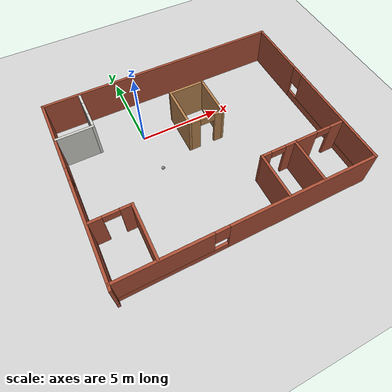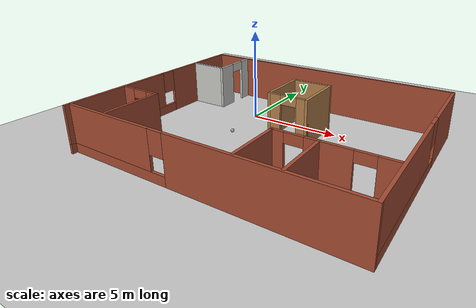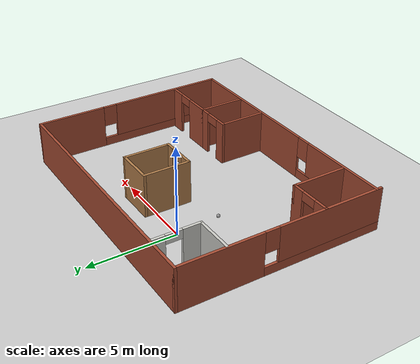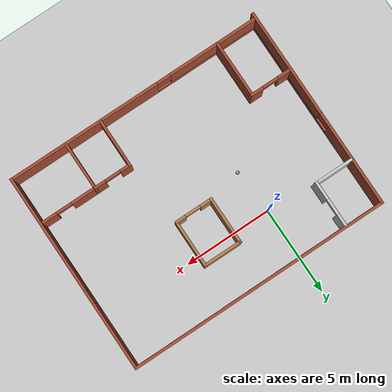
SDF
<sdf version="1.6">
 <world name="default">
  <light name="sun" type="directional">
   <pose>0 0 10 0 -0 0</pose>
   <diffuse>0.8 0.8 0.8 1</diffuse>
   <specular>0.2 0.2 0.2 1</specular>
   <attenuation>
    <range>1000</range>
    <constant>0.9</constant>
    <linear>0.01</linear>
    <quadratic>0.001</quadratic>
   </attenuation>
   <direction>-0.5 0.1 -0.9</direction>
  </light>
  <model name="ground_plane">
   <static>1</static>
   <link name="link">
    <collision name="collision">
     <geometry><plane><normal>0 0 1</normal><size>100 100</size></plane></geometry>
     <surface><friction><ode><mu>100</mu><mu2>50</mu2></ode></friction></surface>
    </collision>
    <visual name="visual">
     <cast_shadows>0</cast_shadows>
     <geometry><plane><normal>0 0 1</normal><size>100 100</size></plane></geometry>
     <material>
      <script><uri>file://media/materials/scripts/gazebo.material</uri><name>Gazebo/Grey</name></script>
     </material>
    </visual>
   </link>
  </model>
  <gravity>0 0 -9.8</gravity>
  <magnetic_field>6e-06 2.3e-05 -4.2e-05</magnetic_field>
  <atmosphere type="adiabatic"/>
  <physics name="default_physics" default="0" type="ode">
   <max_step_size>0.001</max_step_size>
   <real_time_factor>1</real_time_factor>
   <real_time_update_rate>1000</real_time_update_rate>
  </physics>
  <scene><ambient>0.4 0.4 0.4 1</ambient><background>0.7 0.7 0.7 1</background><shadows>1</shadows></scene>
  <spherical_coordinates>
   <surface_model>EARTH_WGS84</surface_model>
   <latitude_deg>0</latitude_deg>
   <longitude_deg>0</longitude_deg>
   <elevation>0</elevation>
   <heading_deg>0</heading_deg>
  </spherical_coordinates>
  <model name="mybuilding">
   <pose>2.60767 -2.86136 0 0 -0 0</pose>
   <link name="Wall_0">
    <pose>-7.425 0 0 0 0 -1.5708</pose>
    <visual name="Wall_0_Visual_0">
     <pose>-3.49613 0 1.25 0 -0 0</pose>
     <geometry><box><size>4.75774 0.15 2.5</size></box></geometry>
     <material>
      <script><uri>file://media/materials/scripts/gazebo.material</uri><name>Gazebo/Bricks</name></script>
      <ambient>1 1 1 1</ambient>
     </material>
     <meta><layer>0</layer></meta>
    </visual>
    <collision name="Wall_0_Collision_0">
     <geometry><box><size>4.75774 0.15 2.5</size></box></geometry>
     <pose>-3.49613 0 1.25 0 -0 0</pose>
    </collision>
    <visual name="Wall_0_Visual_1">
     <pose>2.37887 0 0.25 0 -0 0</pose>
     <geometry><box><size>6.99226 0.15 0.5</size></box></geometry>
     <material>
      <script><uri>file://media/materials/scripts/gazebo.material</uri><name>Gazebo/Bricks</name></script>
      <ambient>1 1 1 1</ambient>
     </material>
     <meta><layer>0</layer></meta>
    </visual>
    <collision name="Wall_0_Collision_1">
     <geometry><box><size>6.99226 0.15 0.5</size></box></geometry>
     <pose>2.37887 0 0.25 0 -0 0</pose>
    </collision>
    <visual name="Wall_0_Visual_2">
     <pose>2.77887 0 1.5 0 -0 0</pose>
     <geometry><box><size>6.19226 0.15 2</size></box></geometry>
     <material>
      <script><uri>file://media/materials/scripts/gazebo.material</uri><name>Gazebo/Bricks</name></script>
      <ambient>1 1 1 1</ambient>
     </material>
     <meta><layer>0</layer></meta>
    </visual>
    <collision name="Wall_0_Collision_2">
     <geometry><box><size>6.19226 0.15 2</size></box></geometry>
     <pose>2.77887 0 1.5 0 -0 0</pose>
    </collision>
    <visual name="Wall_0_Visual_3">
     <pose>-0.717256 0 1.9 0 -0 0</pose>
     <geometry><box><size>0.8 0.15 1.2</size></box></geometry>
     <material>
      <script><uri>file://media/materials/scripts/gazebo.material</uri><name>Gazebo/Bricks</name></script>
      <ambient>1 1 1 1</ambient>
     </material>
     <meta><layer>0</layer></meta>
    </visual>
    <collision name="Wall_0_Collision_3">
     <geometry><box><size>0.8 0.15 1.2</size></box></geometry>
     <pose>-0.717256 0 1.9 0 -0 0</pose>
    </collision>
   </link>
   <link name="Wall_10">
    <collision name="Wall_10_Collision">
     <geometry><box><size>2.75 0.15 2.5</size></box></geometry>
     <pose>0 0 1.25 0 -0 0</pose>
    </collision>
    <visual name="Wall_10_Visual">
     <pose>0 0 1.25 0 -0 0</pose>
     <geometry><box><size>2.75 0.15 2.5</size></box></geometry>
     <material>
      <script><uri>file://media/materials/scripts/gazebo.material</uri><name>Gazebo/Bricks</name></script>
      <ambient>1 1 1 1</ambient>
     </material>
     <meta><layer>0</layer></meta>
    </visual>
    <pose>4.15995 -4.1634 0 0 -0 1.5708</pose>
   </link>
   <link name="Wall_11">
    <pose>5.70995 -2.8634 0 0 -0 0</pose>
    <visual name="Wall_11_Visual_0">
     <pose>-0.878827 0 1.25 0 -0 0</pose>
     <geometry><box><size>1.49235 0.15 2.5</size></box></geometry>
     <material>
      <script><uri>file://media/materials/scripts/gazebo.material</uri><name>Gazebo/Bricks</name></script>
      <ambient>1 1 1 1</ambient>
     </material>
     <meta><layer>0</layer></meta>
    </visual>
    <collision name="Wall_11_Collision_0">
     <geometry><box><size>1.49235 0.15 2.5</size></box></geometry>
     <pose>-0.878827 0 1.25 0 -0 0</pose>
    </collision>
    <visual name="Wall_11_Visual_1">
     <pose>1.19617 0 1.25 0 -0 0</pose>
     <geometry><box><size>0.857654 0.15 2.5</size></box></geometry>
     <material>
      <script><uri>file://media/materials/scripts/gazebo.material</uri><name>Gazebo/Bricks</name></script>
      <ambient>1 1 1 1</ambient>
     </material>
     <meta><layer>0</layer></meta>
    </visual>
    <collision name="Wall_11_Collision_1">
     <geometry><box><size>0.857654 0.15 2.5</size></box></geometry>
     <pose>1.19617 0 1.25 0 -0 0</pose>
    </collision>
    <visual name="Wall_11_Visual_2">
     <pose>0.317346 0 2.25 0 -0 0</pose>
     <geometry><box><size>0.9 0.15 0.5</size></box></geometry>
     <material>
      <script><uri>file://media/materials/scripts/gazebo.material</uri><name>Gazebo/Bricks</name></script>
      <ambient>1 1 1 1</ambient>
     </material>
     <meta><layer>0</layer></meta>
    </visual>
    <collision name="Wall_11_Collision_2">
     <geometry><box><size>0.9 0.15 0.5</size></box></geometry>
     <pose>0.317346 0 2.25 0 -0 0</pose>
    </collision>
   </link>
   <link name="Wall_13">
    <pose>3.10995 -2.8634 0 0 -0 3.14159</pose>
    <visual name="Wall_13_Visual_0">
     <pose>-0.773337 0 1.25 0 -0 0</pose>
     <geometry><box><size>0.703327 0.15 2.5</size></box></geometry>
     <material>
      <script><uri>file://media/materials/scripts/gazebo.material</uri><name>Gazebo/Bricks</name></script>
      <ambient>1 1 1 1</ambient>
     </material>
     <meta><layer>0</layer></meta>
    </visual>
    <collision name="Wall_13_Collision_0">
     <geometry><box><size>0.703327 0.15 2.5</size></box></geometry>
     <pose>-0.773337 0 1.25 0 -0 0</pose>
    </collision>
    <visual name="Wall_13_Visual_1">
     <pose>0.801663 0 1.25 0 -0 0</pose>
     <geometry><box><size>0.646673 0.15 2.5</size></box></geometry>
     <material>
      <script><uri>file://media/materials/scripts/gazebo.material</uri><name>Gazebo/Bricks</name></script>
      <ambient>1 1 1 1</ambient>
     </material>
     <meta><layer>0</layer></meta>
    </visual>
    <collision name="Wall_13_Collision_1">
     <geometry><box><size>0.646673 0.15 2.5</size></box></geometry>
     <pose>0.801663 0 1.25 0 -0 0</pose>
    </collision>
    <visual name="Wall_13_Visual_2">
     <pose>0.028327 0 2.25 0 -0 0</pose>
     <geometry><box><size>0.9 0.15 0.5</size></box></geometry>
     <material>
      <script><uri>file://media/materials/scripts/gazebo.material</uri><name>Gazebo/Bricks</name></script>
      <ambient>1 1 1 1</ambient>
     </material>
     <meta><layer>0</layer></meta>
    </visual>
    <collision name="Wall_13_Collision_2">
     <geometry><box><size>0.9 0.15 0.5</size></box></geometry>
     <pose>0.028327 0 2.25 0 -0 0</pose>
    </collision>
   </link>
   <link name="Wall_14">
    <collision name="Wall_14_Collision">
     <geometry><box><size>2.75 0.15 2.5</size></box></geometry>
     <pose>0 0 1.25 0 -0 0</pose>
    </collision>
    <visual name="Wall_14_Visual">
     <pose>0 0 1.25 0 -0 0</pose>
     <geometry><box><size>2.75 0.15 2.5</size></box></geometry>
     <material>
      <script><uri>file://media/materials/scripts/gazebo.material</uri><name>Gazebo/Bricks</name></script>
      <ambient>1 1 1 1</ambient>
     </material>
     <meta><layer>0</layer></meta>
    </visual>
    <pose>2.05995 -4.1634 0 0 0 -1.5708</pose>
   </link>
   <link name="Wall_16">
    <collision name="Wall_16_Collision">
     <geometry><box><size>2.25 0.15 2.5</size></box></geometry>
     <pose>0 0 1.25 0 -0 0</pose>
    </collision>
    <visual name="Wall_16_Visual">
     <pose>0 0 1.25 0 -0 0</pose>
     <geometry><box><size>2.25 0.15 2.5</size></box></geometry>
     <material>
      <script><uri>file://media/materials/scripts/gazebo.material</uri><name>Gazebo/CeilingTiled</name></script>
      <ambient>1 1 1 1</ambient>
     </material>
     <meta><layer>0</layer></meta>
    </visual>
    <pose>-6.30974 3.13692 0 0 -0 0</pose>
   </link>
   <link name="Wall_17">
    <pose>-5.25974 4.43692 0 0 -0 1.5708</pose>
    <visual name="Wall_17_Visual_0">
     <pose>-0.839232 0 1.25 0 -0 0</pose>
     <geometry><box><size>1.07154 0.15 2.5</size></box></geometry>
     <material>
      <script><uri>file://media/materials/scripts/gazebo.material</uri><name>Gazebo/CeilingTiled</name></script>
      <ambient>1 1 1 1</ambient>
     </material>
     <meta><layer>0</layer></meta>
    </visual>
    <collision name="Wall_17_Collision_0">
     <geometry><box><size>1.07154 0.15 2.5</size></box></geometry>
     <pose>-0.839232 0 1.25 0 -0 0</pose>
    </collision>
    <visual name="Wall_17_Visual_1">
     <pose>0.985768 0 1.25 0 -0 0</pose>
     <geometry><box><size>0.778464 0.15 2.5</size></box></geometry>
     <material>
      <script><uri>file://media/materials/scripts/gazebo.material</uri><name>Gazebo/CeilingTiled</name></script>
      <ambient>1 1 1 1</ambient>
     </material>
     <meta><layer>0</layer></meta>
    </visual>
    <collision name="Wall_17_Collision_1">
     <geometry><box><size>0.778464 0.15 2.5</size></box></geometry>
     <pose>0.985768 0 1.25 0 -0 0</pose>
    </collision>
    <visual name="Wall_17_Visual_2">
     <pose>0.146536 0 2.25 0 -0 0</pose>
     <geometry><box><size>0.9 0.15 0.5</size></box></geometry>
     <material>
      <script><uri>file://media/materials/scripts/gazebo.material</uri><name>Gazebo/CeilingTiled</name></script>
      <ambient>1 1 1 1</ambient>
     </material>
     <meta><layer>0</layer></meta>
    </visual>
    <collision name="Wall_17_Collision_2">
     <geometry><box><size>0.9 0.15 0.5</size></box></geometry>
     <pose>0.146536 0 2.25 0 -0 0</pose>
    </collision>
   </link>
   <link name="Wall_19">
    <collision name="Wall_19_Collision">
     <geometry><box><size>2.75 0.15 2.5</size></box></geometry>
     <pose>0 0 1.25 0 -0 0</pose>
    </collision>
    <visual name="Wall_19_Visual">
     <pose>0 0 1.25 0 -0 0</pose>
     <geometry><box><size>2.75 0.15 2.5</size></box></geometry>
     <material>
      <script><uri>file://media/materials/scripts/gazebo.material</uri><name>Gazebo/Wood</name></script>
      <ambient>1 1 1 1</ambient>
     </material>
     <meta><layer>0</layer></meta>
    </visual>
    <pose>-0.390065 2.15252 0 0 0 -1.5708</pose>
   </link>
   <link name="Wall_20">
    <pose>0.659935 0.852524 0 0 -0 0</pose>
    <visual name="Wall_20_Visual_0">
     <pose>-0.760187 0 1.25 0 -0 0</pose>
     <geometry><box><size>0.729627 0.15 2.5</size></box></geometry>
     <material>
      <script><uri>file://media/materials/scripts/gazebo.material</uri><name>Gazebo/Wood</name></script>
      <ambient>1 1 1 1</ambient>
     </material>
     <meta><layer>0</layer></meta>
    </visual>
    <collision name="Wall_20_Collision_0">
     <geometry><box><size>0.729627 0.15 2.5</size></box></geometry>
     <pose>-0.760187 0 1.25 0 -0 0</pose>
    </collision>
    <visual name="Wall_20_Visual_1">
     <pose>0.814813 0 1.25 0 -0 0</pose>
     <geometry><box><size>0.620373 0.15 2.5</size></box></geometry>
     <material>
      <script><uri>file://media/materials/scripts/gazebo.material</uri><name>Gazebo/Wood</name></script>
      <ambient>1 1 1 1</ambient>
     </material>
     <meta><layer>0</layer></meta>
    </visual>
    <collision name="Wall_20_Collision_1">
     <geometry><box><size>0.620373 0.15 2.5</size></box></geometry>
     <pose>0.814813 0 1.25 0 -0 0</pose>
    </collision>
    <visual name="Wall_20_Visual_2">
     <pose>0.054627 0 2.25 0 -0 0</pose>
     <geometry><box><size>0.9 0.15 0.5</size></box></geometry>
     <material>
      <script><uri>file://media/materials/scripts/gazebo.material</uri><name>Gazebo/Wood</name></script>
      <ambient>1 1 1 1</ambient>
     </material>
     <meta><layer>0</layer></meta>
    </visual>
    <collision name="Wall_20_Collision_2">
     <geometry><box><size>0.9 0.15 0.5</size></box></geometry>
     <pose>0.054627 0 2.25 0 -0 0</pose>
    </collision>
   </link>
   <link name="Wall_21">
    <collision name="Wall_21_Collision">
     <geometry><box><size>2.75 0.15 2.5</size></box></geometry>
     <pose>0 0 1.25 0 -0 0</pose>
    </collision>
    <visual name="Wall_21_Visual">
     <pose>0 0 1.25 0 -0 0</pose>
     <geometry><box><size>2.75 0.15 2.5</size></box></geometry>
     <material>
      <script><uri>file://media/materials/scripts/gazebo.material</uri><name>Gazebo/Wood</name></script>
      <ambient>1 1 1 1</ambient>
     </material>
     <meta><layer>0</layer></meta>
    </visual>
    <pose>1.70993 2.15252 0 0 -0 1.5708</pose>
   </link>
   <link name="Wall_22">
    <collision name="Wall_22_Collision">
     <geometry><box><size>2.25 0.15 2.5</size></box></geometry>
     <pose>0 0 1.25 0 -0 0</pose>
    </collision>
    <visual name="Wall_22_Visual">
     <pose>0 0 1.25 0 -0 0</pose>
     <geometry><box><size>2.25 0.15 2.5</size></box></geometry>
     <material>
      <script><uri>file://media/materials/scripts/gazebo.material</uri><name>Gazebo/Wood</name></script>
      <ambient>1 1 1 1</ambient>
     </material>
     <meta><layer>0</layer></meta>
    </visual>
    <pose>0.659935 3.45252 0 0 -0 3.14159</pose>
   </link>
   <link name="Wall_24">
    <pose>-6.23734 -2.38622 0 0 -0 0</pose>
    <visual name="Wall_24_Visual_0">
     <pose>-0.819435 0 1.25 0 -0 0</pose>
     <geometry><box><size>0.861131 0.15 2.5</size></box></geometry>
     <material>
      <script><uri>file://media/materials/scripts/gazebo.material</uri><name>Gazebo/Bricks</name></script>
      <ambient>1 1 1 1</ambient>
     </material>
     <meta><layer>0</layer></meta>
    </visual>
    <collision name="Wall_24_Collision_0">
     <geometry><box><size>0.861131 0.15 2.5</size></box></geometry>
     <pose>-0.819435 0 1.25 0 -0 0</pose>
    </collision>
    <visual name="Wall_24_Visual_1">
     <pose>0.880565 0 1.25 0 -0 0</pose>
     <geometry><box><size>0.738869 0.15 2.5</size></box></geometry>
     <material>
      <script><uri>file://media/materials/scripts/gazebo.material</uri><name>Gazebo/Bricks</name></script>
      <ambient>1 1 1 1</ambient>
     </material>
     <meta><layer>0</layer></meta>
    </visual>
    <collision name="Wall_24_Collision_1">
     <geometry><box><size>0.738869 0.15 2.5</size></box></geometry>
     <pose>0.880565 0 1.25 0 -0 0</pose>
    </collision>
    <visual name="Wall_24_Visual_2">
     <pose>0.061131 0 2.25 0 -0 0</pose>
     <geometry><box><size>0.9 0.15 0.5</size></box></geometry>
     <material>
      <script><uri>file://media/materials/scripts/gazebo.material</uri><name>Gazebo/Bricks</name></script>
      <ambient>1 1 1 1</ambient>
     </material>
     <meta><layer>0</layer></meta>
    </visual>
    <collision name="Wall_24_Collision_2">
     <geometry><box><size>0.9 0.15 0.5</size></box></geometry>
     <pose>0.061131 0 2.25 0 -0 0</pose>
    </collision>
   </link>
   <link name="Wall_25">
    <collision name="Wall_25_Collision">
     <geometry><box><size>3.25 0.15 2.5</size></box></geometry>
     <pose>0 0 1.25 0 -0 0</pose>
    </collision>
    <visual name="Wall_25_Visual">
     <pose>0 0 1.25 0 -0 0</pose>
     <geometry><box><size>3.25 0.15 2.5</size></box></geometry>
     <material>
      <script><uri>file://media/materials/scripts/gazebo.material</uri><name>Gazebo/Bricks</name></script>
      <ambient>1 1 1 1</ambient>
     </material>
     <meta><layer>0</layer></meta>
    </visual>
    <pose>-5.06234 -3.93622 0 0 0 -1.5708</pose>
   </link>
   <link name="Wall_5">
    <collision name="Wall_5_Collision">
     <geometry><box><size>15 0.15 2.5</size></box></geometry>
     <pose>0 0 1.25 0 -0 0</pose>
    </collision>
    <visual name="Wall_5_Visual">
     <pose>0 0 1.25 0 -0 0</pose>
     <geometry><box><size>15 0.15 2.5</size></box></geometry>
     <material>
      <script><uri>file://media/materials/scripts/gazebo.material</uri><name>Gazebo/Bricks</name></script>
      <ambient>1 1 1 1</ambient>
     </material>
     <meta><layer>0</layer></meta>
    </visual>
    <pose>0 5.8 0 0 -0 0</pose>
   </link>
   <link name="Wall_6">
    <pose>7.425 0.125 0 0 0 -1.5708</pose>
    <visual name="Wall_6_Visual_0">
     <pose>-3.77879 0 1.25 0 -0 0</pose>
     <geometry><box><size>3.94242 0.15 2.5</size></box></geometry>
     <material>
      <script><uri>file://media/materials/scripts/gazebo.material</uri><name>Gazebo/Bricks</name></script>
      <ambient>1 1 1 1</ambient>
     </material>
     <meta><layer>0</layer></meta>
    </visual>
    <collision name="Wall_6_Collision_0">
     <geometry><box><size>3.94242 0.15 2.5</size></box></geometry>
     <pose>-3.77879 0 1.25 0 -0 0</pose>
    </collision>
    <visual name="Wall_6_Visual_1">
     <pose>1.97121 0 0.25 0 -0 0</pose>
     <geometry><box><size>7.55758 0.15 0.5</size></box></geometry>
     <material>
      <script><uri>file://media/materials/scripts/gazebo.material</uri><name>Gazebo/Bricks</name></script>
      <ambient>1 1 1 1</ambient>
     </material>
     <meta><layer>0</layer></meta>
    </visual>
    <collision name="Wall_6_Collision_1">
     <geometry><box><size>7.55758 0.15 0.5</size></box></geometry>
     <pose>1.97121 0 0.25 0 -0 0</pose>
    </collision>
    <visual name="Wall_6_Visual_2">
     <pose>2.37121 0 1.5 0 -0 0</pose>
     <geometry><box><size>6.75758 0.15 2</size></box></geometry>
     <material>
      <script><uri>file://media/materials/scripts/gazebo.material</uri><name>Gazebo/Bricks</name></script>
      <ambient>1 1 1 1</ambient>
     </material>
     <meta><layer>0</layer></meta>
    </visual>
    <collision name="Wall_6_Collision_2">
     <geometry><box><size>6.75758 0.15 2</size></box></geometry>
     <pose>2.37121 0 1.5 0 -0 0</pose>
    </collision>
    <visual name="Wall_6_Visual_3">
     <pose>-1.40758 0 1.9 0 -0 0</pose>
     <geometry><box><size>0.8 0.15 1.2</size></box></geometry>
     <material>
      <script><uri>file://media/materials/scripts/gazebo.material</uri><name>Gazebo/Bricks</name></script>
      <ambient>1 1 1 1</ambient>
     </material>
     <meta><layer>0</layer></meta>
    </visual>
    <collision name="Wall_6_Collision_3">
     <geometry><box><size>0.8 0.15 1.2</size></box></geometry>
     <pose>-1.40758 0 1.9 0 -0 0</pose>
    </collision>
   </link>
   <link name="Wall_7">
    <pose>0 -5.55 0 0 -0 3.14159</pose>
    <visual name="Wall_7_Visual_0">
     <pose>-3.058 0 1.25 0 -0 0</pose>
     <geometry><box><size>8.884 0.15 2.5</size></box></geometry>
     <material>
      <script><uri>file://media/materials/scripts/gazebo.material</uri><name>Gazebo/Bricks</name></script>
      <ambient>1 1 1 1</ambient>
     </material>
     <meta><layer>0</layer></meta>
    </visual>
    <collision name="Wall_7_Collision_0">
     <geometry><box><size>8.884 0.15 2.5</size></box></geometry>
     <pose>-3.058 0 1.25 0 -0 0</pose>
    </collision>
    <visual name="Wall_7_Visual_1">
     <pose>4.442 0 0.25 0 -0 0</pose>
     <geometry><box><size>6.116 0.15 0.5</size></box></geometry>
     <material>
      <script><uri>file://media/materials/scripts/gazebo.material</uri><name>Gazebo/Bricks</name></script>
      <ambient>1 1 1 1</ambient>
     </material>
     <meta><layer>0</layer></meta>
    </visual>
    <collision name="Wall_7_Collision_1">
     <geometry><box><size>6.116 0.15 0.5</size></box></geometry>
     <pose>4.442 0 0.25 0 -0 0</pose>
    </collision>
    <visual name="Wall_7_Visual_2">
     <pose>4.842 0 1.5 0 -0 0</pose>
     <geometry><box><size>5.316 0.15 2</size></box></geometry>
     <material>
      <script><uri>file://media/materials/scripts/gazebo.material</uri><name>Gazebo/Bricks</name></script>
      <ambient>1 1 1 1</ambient>
     </material>
     <meta><layer>0</layer></meta>
    </visual>
    <collision name="Wall_7_Collision_2">
     <geometry><box><size>5.316 0.15 2</size></box></geometry>
     <pose>4.842 0 1.5 0 -0 0</pose>
    </collision>
    <visual name="Wall_7_Visual_3">
     <pose>1.784 0 1.9 0 -0 0</pose>
     <geometry><box><size>0.8 0.15 1.2</size></box></geometry>
     <material>
      <script><uri>file://media/materials/scripts/gazebo.material</uri><name>Gazebo/Bricks</name></script>
      <ambient>1 1 1 1</ambient>
     </material>
     <meta><layer>0</layer></meta>
    </visual>
    <collision name="Wall_7_Collision_3">
     <geometry><box><size>0.8 0.15 1.2</size></box></geometry>
     <pose>1.784 0 1.9 0 -0 0</pose>
    </collision>
   </link>
   <static>1</static>
  </model>
  <model name="my_ball">
   <link name="link_0">
    <inertial>
     <mass>1</mass>
     <inertia><ixx>0.1</ixx><ixy>0</ixy><ixz>0</ixz><iyy>0.1</iyy><iyz>0</iyz><izz>0.1</izz></inertia>
    </inertial>
    <visual name="visual">
     <geometry><sphere><radius>0.1</radius></sphere></geometry>
     <material>
      <lighting>1</lighting>
      <script><uri>file://media/materials/scripts/gazebo.material</uri><name>Gazebo/Grey</name></script>
      <shader type="pixel"><normal_map>__default__</normal_map></shader>
      <ambient>1 1 1 1</ambient>
      <diffuse>1 1 1 1</diffuse>
      <specular>1 1 1 1</specular>
      <emissive>1 1 1 1</emissive>
     </material>
    </visual>
    <collision name="collision">
     <geometry><sphere><radius>0.1</radius></sphere></geometry>
     <surface>
      <friction>
       <ode><mu>1</mu><mu2>1</mu2><fdir1>0 0 0</fdir1><slip1>0</slip1><slip2>0</slip2></ode>
       <torsional>
        <coefficient>1</coefficient>
        <patch_radius>0</patch_radius>
        <surface_radius>0</surface_radius>
        <use_patch_radius>1</use_patch_radius>
        <ode><slip>0</slip></ode>
       </torsional>
      </friction>
      <bounce><restitution_coefficient>0</restitution_coefficient><threshold>1e+06</threshold></bounce>
      <contact>
       <collide_without_contact>0</collide_without_contact>
       <collide_without_contact_bitmask>1</collide_without_contact_bitmask>
       <collide_bitmask>1</collide_bitmask>
       <ode>
        <soft_cfm>0</soft_cfm>
        <soft_erp>0.2</soft_erp>
        <kp>1e+13</kp>
        <kd>1</kd>
        <max_vel>0.01</max_vel>
        <min_depth>0</min_depth>
       </ode>
       <bullet>
        <split_impulse>1</split_impulse>
        <split_impulse_penetration_threshold>-0.01</split_impulse_penetration_threshold>
        <soft_cfm>0</soft_cfm>
        <soft_erp>0.2</soft_erp>
        <kp>1e+13</kp>
        <kd>1</kd>
       </bullet>
      </contact>
     </surface>
    </collision>
   </link>
   <static>0</static>
   <pose>0.178211 -2.53739 0.1 0 -0 0</pose>
  </model>
 </world>
</sdf>
